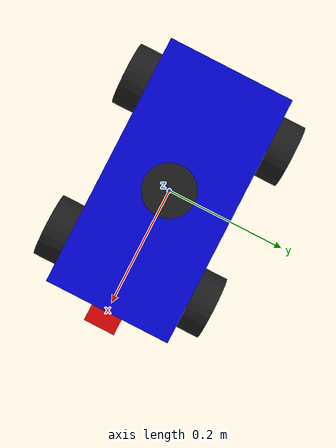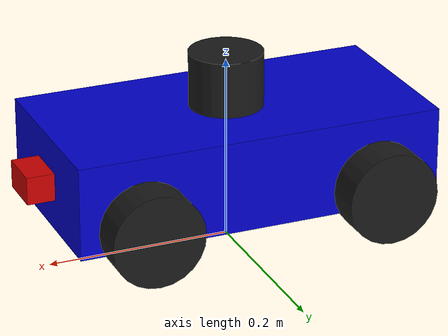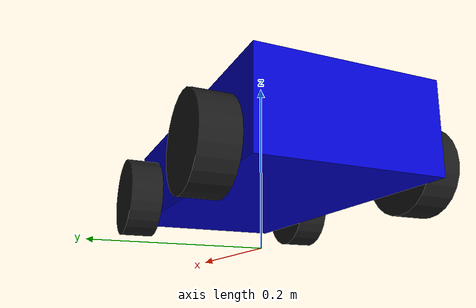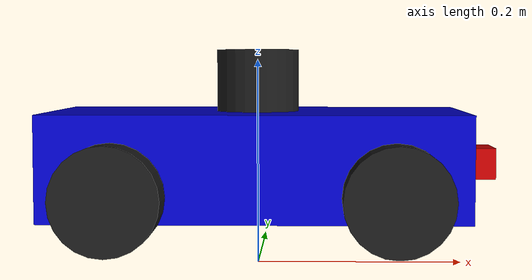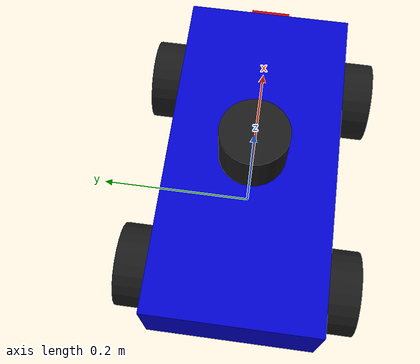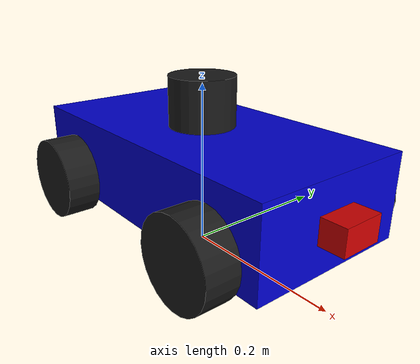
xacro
<?xml version="1.0"?>
<robot xmlns:xacro="http://www.ros.org/wiki/xacro" name="mr_peterbot">

    <!-- === VARIABLES ===-->
    <!-- MAIN BODY -->
    <xacro:property name="chassis_length" value="0.4"/>
    <xacro:property name="chassis_width"  value="0.2"/>
    <xacro:property name="chassis_height" value="0.1"/>
    <xacro:property name="chassis_mass"   value="2.0"/>

    <!-- WHEELS -->
    <xacro:property name="wheel_radius"   value="0.05"/>
    <xacro:property name="wheel_width"    value="0.04"/>
    <xacro:property name="wheel_mass"     value="0.5"/>
    <xacro:property name="wheel_x_offset" value="0.13"/>
    <xacro:property name="wheel_y_offset" value="0.12"/>

    <!-- CINEMATIC AND DYNAMICS VALUES-->
    <xacro:property name="max_steering_angle"            value="0.6108652"/>
    <xacro:property name="max_steering_angular_velocity" value="1.570796"/>
    <xacro:property name="max_steering_effort"           value="10.0"/>
    <xacro:property name="max_velocity"                  value="0.2"/>
    <xacro:property name="max_effort"                    value="10.0"/>
    <xacro:property name="max_wheel_angular_velocity"    value="${max_velocity / wheel_radius}"/>

    <!-- LiDAR -->
    <xacro:property name="lidar_radius"      value="0.04"/>
    <xacro:property name="lidar_height"      value="0.06"/>
    <xacro:property name="lidar_mass"        value="0.1"/>
    <xacro:property name="lidar_min_angle"   value="-3.14159"/>
    <xacro:property name="lidar_max_angle"   value="3.14159"/>
    <xacro:property name="lidar_samples"     value="360"/>
    <xacro:property name="lidar_min_range"   value="0.12"/>
    <xacro:property name="lidar_max_range"   value="50"/>
    <xacro:property name="lidar_update_rate" value="10.0"/>
    <xacro:property name="lidar_noise_mean"   value="0.0"/>
    <xacro:property name="lidar_noise_stddev" value="0.01"/>

    <!-- CAMERA -->
    <xacro:property name="camera_width"  value="0.05"/>
    <xacro:property name="camera_height" value="0.03"/>
    <xacro:property name="camera_depth"  value="0.03"/>
    <xacro:property name="camera_mass"   value="0.05"/>
    <xacro:property name="camera_fov"    value="1.3962634"/>
    <xacro:property name="camera_fps"    value="30"/>
    <xacro:property name="image_width"   value="640"/>
    <xacro:property name="image_height"  value="480"/>

    <!-- ===== INERTIA MACROS ===== -->
    <xacro:macro name="box_inertia" params="m l w h">
        <inertial>
            <mass value="${m}"/>
            <inertia ixx="${(1/12) * m * (w*w + h*h)}" ixy="0.0" ixz="0.0"
                     iyy="${(1/12) * m * (l*l + h*h)}" iyz="0.0"
                     izz="${(1/12) * m * (l*l + w*w)}"/>
        </inertial>
    </xacro:macro>

    <xacro:macro name="cylinder_inertia" params="m r l">
        <inertial>
            <mass value="${m}"/>
            <inertia ixx="${(1/12) * m * (3*r*r + l*l)}" ixy="0.0" ixz="0.0"
                     iyy="${(1/12) * m * (3*r*r + l*l)}" iyz="0.0"
                     izz="${(1/2)  * m * r*r}"/>
        </inertial>
    </xacro:macro>

    <!-- ===== BASE LINK ===== -->
    <link name="base_link"/>

    <!-- ===== CHASSIS ===== -->
    <link name="chassis">
        <visual>
            <geometry>
                <box size="${chassis_length} ${chassis_width} ${chassis_height}"/>
            </geometry>
            <material name="blue">
                <color rgba="0.0 0.0 0.8 1.0"/>
            </material>
        </visual>
        <collision>
            <geometry>
                <box size="${chassis_length} ${chassis_width} ${chassis_height}"/>
            </geometry>
        </collision>
        <xacro:box_inertia m="${chassis_mass}"
                           l="${chassis_length}"
                           w="${chassis_width}"
                           h="${chassis_height}"/>
    </link>

    <!-- No rotation — X is forward, Y is left, Z is up -->
    <joint name="base_to_chassis" type="fixed">
        <parent link="base_link"/>
        <child  link="chassis"/>
        <origin xyz="0 0 ${wheel_radius + chassis_height/2}" rpy="0 0 0"/>
    </joint>

    <!-- ===== WHEEL MACROS ===== -->
    <!-- FRONT WHEEL MACRO = WHEEL LINK + STEERING LINK -->
    <xacro:macro name="front_wheel" params="prefix">

        <link name="${prefix}_wheel_link">
            <visual>
                <origin xyz="0.0 0.0 0.0" rpy="0 0 0"/>
                <geometry>
                    <cylinder radius="${wheel_radius}" length="${wheel_width}"/>
                </geometry>
                <material name="black">
                    <color rgba="0.1 0.1 0.1 1.0"/>
                </material>
            </visual>
            <collision>
                <origin xyz="0.0 0.0 0.0" rpy="0 0 0"/>
                <geometry>
                    <cylinder radius="${wheel_radius}" length="${wheel_width}"/>
                </geometry>
            </collision>
            <xacro:cylinder_inertia m="${wheel_mass}" r="${wheel_radius}" l="${wheel_width}"/>
        </link>

        <link name="${prefix}_steering_link">
            <visual>
                <origin xyz="0.0 0.0 0.0" rpy="0 0 0"/>
                <geometry>
                    <cylinder length="0.001" radius="0.01"/>
                </geometry>
            </visual>
            <collision>
                <origin xyz="0.0 0.0 0.0" rpy="0 0 0"/>
                <geometry>
                    <cylinder length="0.001" radius="0.01"/>
                </geometry>
            </collision>
            <inertial>
                <mass value="0.01"/>
                <inertia ixx="1e-6" ixy="0.0" ixz="0.0"
                         iyy="1e-6" iyz="0.0"
                         izz="1e-6"/>
            </inertial>
        </link>

    </xacro:macro>

    <!-- REAR WHEEL MACRO = WHEEL LINK ONLY -->
    <xacro:macro name="rear_wheel" params="prefix">

        <link name="${prefix}_wheel_link">
            <visual>
                <origin xyz="0.0 0.0 0.0" rpy="0 0 0"/>
                <geometry>
                    <cylinder radius="${wheel_radius}" length="${wheel_width}"/>
                </geometry>
                <material name="black">
                    <color rgba="0.1 0.1 0.1 1.0"/>
                </material>
            </visual>
            <collision>
                <origin xyz="0.0 0.0 0.0" rpy="0 0 0"/>
                <geometry>
                    <cylinder radius="${wheel_radius}" length="${wheel_width}"/>
                </geometry>
            </collision>
            <xacro:cylinder_inertia m="${wheel_mass}" r="${wheel_radius}" l="${wheel_width}"/>
        </link>

    </xacro:macro>

    <!-- ===== CREATING THE 4 WHEELS ===== -->
    <xacro:front_wheel prefix="front_left"/>
    <xacro:front_wheel prefix="front_right"/>
    <xacro:rear_wheel  prefix="rear_left"/>
    <xacro:rear_wheel  prefix="rear_right"/>

    <!-- ===== JOINT MACROS ===== -->
    <!-- FRONT WHEEL JOINTS: steering (revolute) + wheel (continuous) -->
    <xacro:macro name="front_wheel_joints" params="prefix x y">

        <joint name="${prefix}_steering_joint" type="revolute">
            <origin xyz="${x} ${y} -${wheel_radius/2}" rpy="0 0 0"/>
            <parent link="chassis"/>
            <child link="${prefix}_steering_link"/>
            <axis xyz="0 0 1"/>
            <limit effort="${max_steering_effort}"
                   lower="${-max_steering_angle}"
                   upper="${max_steering_angle}"
                   velocity="${max_steering_angular_velocity}"/>
            <dynamics damping="1.0" friction="0.1"/>
        </joint>

        <joint name="${prefix}_wheel_joint" type="continuous">
            <origin xyz="0 0 0" rpy="1.5708 0 0"/>
            <parent link="${prefix}_steering_link"/>
            <child link="${prefix}_wheel_link"/>
            <axis xyz="0 0 1"/>
            <dynamics damping="0.1" friction="0.1"/>
        </joint>

    </xacro:macro>

    <!-- REAR WHEEL JOINT: wheel only (continuous) -->
    <xacro:macro name="rear_wheel_joint" params="prefix x y">

        <joint name="${prefix}_wheel_joint" type="continuous">
            <origin xyz="${x} ${y} -${wheel_radius/2}" rpy="1.5708 0 0"/>
            <parent link="chassis"/>
            <child link="${prefix}_wheel_link"/>
            <axis xyz="0 0 1"/>
            <dynamics damping="0.01" friction="0.01"/>
        </joint>

    </xacro:macro>

    <!-- ===== CREATING THE JOINTS FOR EACH WHEEL ===== -->
    <xacro:front_wheel_joints prefix="front_left"  x=" ${wheel_x_offset}" y=" ${wheel_y_offset}"/>
    <xacro:front_wheel_joints prefix="front_right" x=" ${wheel_x_offset}" y="-${wheel_y_offset}"/>
    <xacro:rear_wheel_joint   prefix="rear_left"   x="-${wheel_x_offset}" y=" ${wheel_y_offset}"/>
    <xacro:rear_wheel_joint   prefix="rear_right"  x="-${wheel_x_offset}" y="-${wheel_y_offset}"/>

    <!-- ===== LiDAR ===== -->
    <link name="lidar_link">
        <visual>
            <geometry>
                <cylinder radius="${lidar_radius}" length="${lidar_height}"/>
            </geometry>
            <material name="black">
                <color rgba="0.1 0.1 0.1 1.0"/>
            </material>
        </visual>
        <collision>
            <geometry>
                <cylinder radius="${lidar_radius}" length="${lidar_height}"/>
            </geometry>
        </collision>
        <xacro:cylinder_inertia m="${lidar_mass}" r="${lidar_radius}" l="${lidar_height}"/>
    </link>

    <joint name="lidar_joint" type="fixed">
        <parent link="chassis"/>
        <child  link="lidar_link"/>
        <origin xyz="0 0 ${chassis_height/2 + lidar_height/2}"/>
    </joint>

    <!-- ===== CAMERA ===== -->
    <link name="camera_link">
        <visual>
            <geometry>
                <box size="${camera_depth} ${camera_width} ${camera_height}"/>
            </geometry>
            <material name="red">
                <color rgba="0.8 0.0 0.0 1.0"/>
            </material>
        </visual>
        <collision>
            <geometry>
                <box size="${camera_depth} ${camera_width} ${camera_height}"/>
            </geometry>
        </collision>
        <xacro:box_inertia m="${camera_mass}"
                           l="${camera_depth}"
                           w="${camera_width}"
                           h="${camera_height}"/>
    </link>

    <joint name="camera_joint" type="fixed">
        <parent link="chassis"/>
        <child  link="camera_link"/>
        <origin xyz="${chassis_length/2 + camera_depth/2} 0 0"/>
    </joint>

    <!-- ===== GAZEBO SIMULATION SETUP ===== -->
    <gazebo reference="chassis">
        <material>Gazebo/Blue</material>
        <mu1>0.001</mu1>
        <mu2>0.001</mu2>
    </gazebo>

    <gazebo reference="front_left_wheel_link">
        <mu1>100.0</mu1>
        <mu2>100.0</mu2>
    </gazebo>

    <gazebo reference="front_right_wheel_link">
        <mu1>100.0</mu1>
        <mu2>100.0</mu2>
    </gazebo>

    <gazebo reference="rear_left_wheel_link">
        <mu1>100.0</mu1>
        <mu2>100.0</mu2>
    </gazebo>

    <gazebo reference="rear_right_wheel_link">
        <mu1>100.0</mu1>
        <mu2>100.0</mu2>
    </gazebo>

    <gazebo reference="lidar_link">
        <material>Gazebo/Black</material>
        <mu1>0.001</mu1>
        <mu2>0.001</mu2>
    </gazebo>

    <gazebo reference="camera_link">
        <material>Gazebo/Red</material>
        <mu1>0.001</mu1>
        <mu2>0.001</mu2>
    </gazebo>

    <!-- ===== ROS2 CONTROL ===== -->
    <ros2_control name="mr_peterbot" type="system">
        <hardware>
            <plugin>gz_ros2_control/GazeboSimSystem</plugin>
        </hardware>

        <joint name="front_left_steering_joint">
            <command_interface name="position">
                <param name="min">${-max_steering_angle}</param>
                <param name="max">${max_steering_angle}</param>
            </command_interface>
            <state_interface name="position"/>
            <state_interface name="velocity"/>
            <state_interface name="effort"/>
        </joint>

        <joint name="front_right_steering_joint">
            <command_interface name="position">
                <param name="min">${-max_steering_angle}</param>
                <param name="max">${max_steering_angle}</param>
            </command_interface>
            <state_interface name="position"/>
            <state_interface name="velocity"/>
            <state_interface name="effort"/>
        </joint>

        <joint name="rear_left_wheel_joint">
            <command_interface name="velocity">
                <param name="min">${-max_wheel_angular_velocity}</param>
                <param name="max">${max_wheel_angular_velocity}</param>
            </command_interface>
            <state_interface name="position"/>
            <state_interface name="velocity"/>
            <state_interface name="effort"/>
        </joint>

        <joint name="rear_right_wheel_joint">
            <command_interface name="velocity">
                <param name="min">${-max_wheel_angular_velocity}</param>
                <param name="max">${max_wheel_angular_velocity}</param>
            </command_interface>
            <state_interface name="position"/>
            <state_interface name="velocity"/>
            <state_interface name="effort"/>
        </joint>

    </ros2_control>

    <!-- ===== GAZEBO PLUGINS ===== -->
    <gazebo>
        <plugin filename="gz-sim-joint-state-publisher-system"
                name="gz::sim::systems::JointStatePublisher">
            <topic>joint_states</topic>
            <joint_name>front_left_steering_joint</joint_name>
            <joint_name>front_right_steering_joint</joint_name>
            <joint_name>front_left_wheel_joint</joint_name>
            <joint_name>front_right_wheel_joint</joint_name>
            <joint_name>rear_left_wheel_joint</joint_name>
            <joint_name>rear_right_wheel_joint</joint_name>
        </plugin>

        <plugin filename="gz_ros2_control-system"
                name="gz_ros2_control::GazeboSimROS2ControlPlugin">
            <parameters>$(find mr_peterbot_bringup)/config/controllers.yaml</parameters>
        </plugin>

        <plugin filename="gz-sim-sensors-system"
                name="gz::sim::systems::Sensors">
            <render_engine>ogre2</render_engine>
        </plugin>

        <plugin filename="gz-sim-odometry-publisher-system"
                name="gz::sim::systems::OdometryPublisher">
            <odom_frame>odom</odom_frame>
            <robot_base_frame>base_link</robot_base_frame>
            <publish_rate>50</publish_rate>
        </plugin>
    </gazebo>

</robot>
